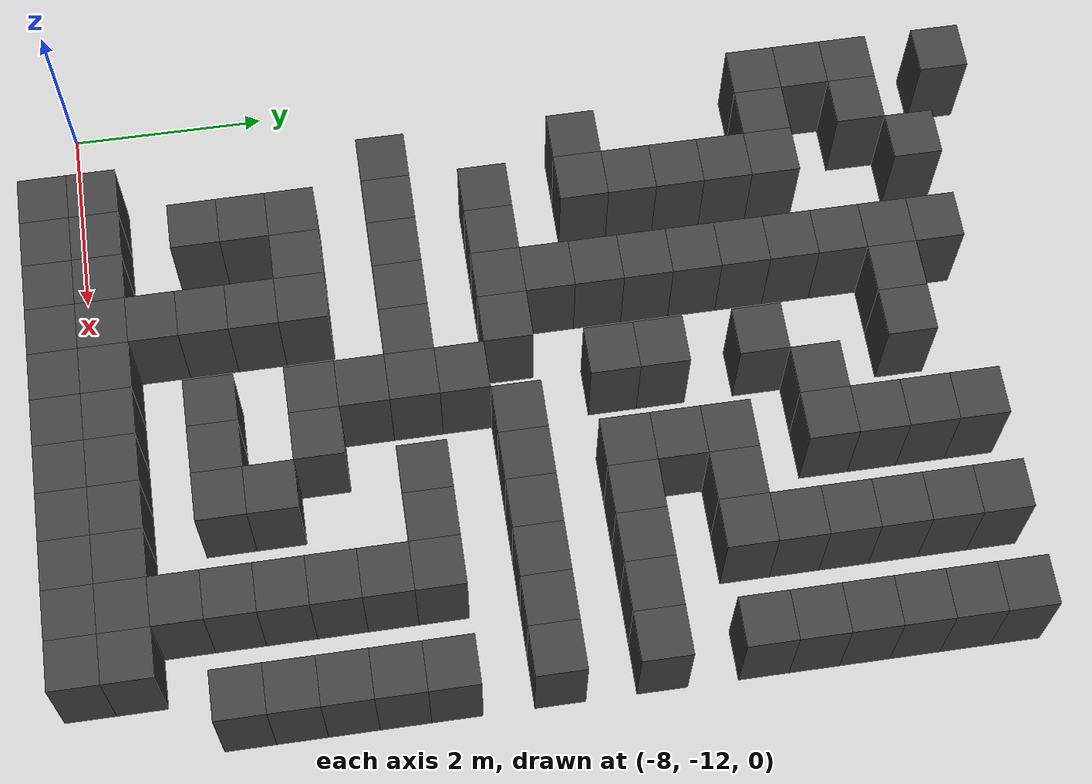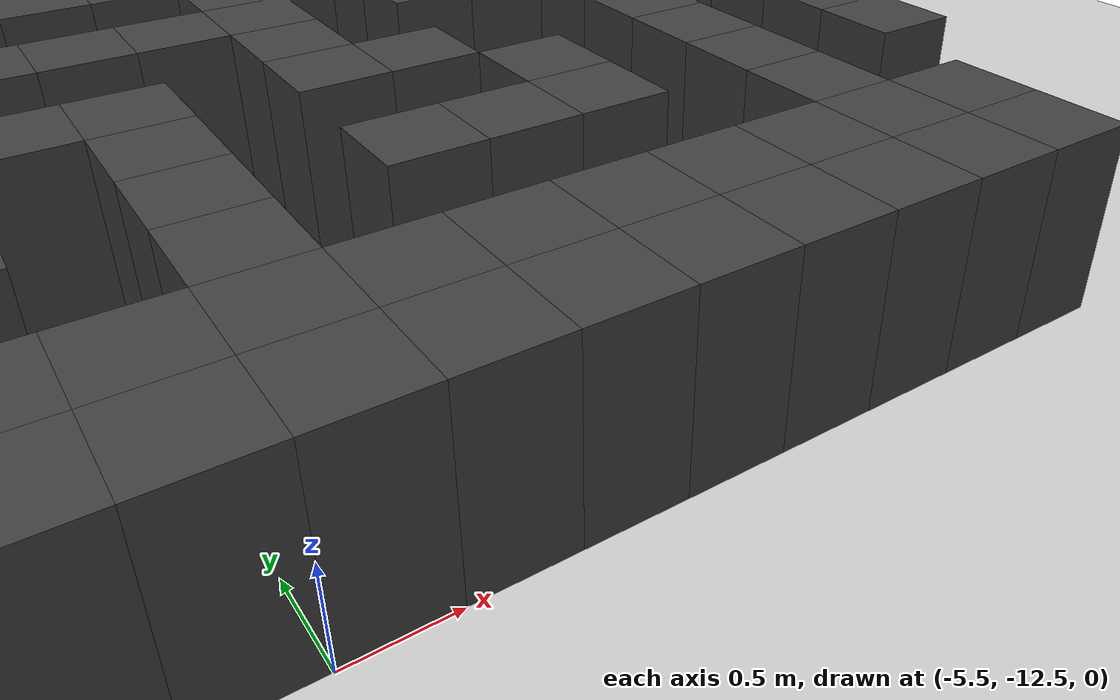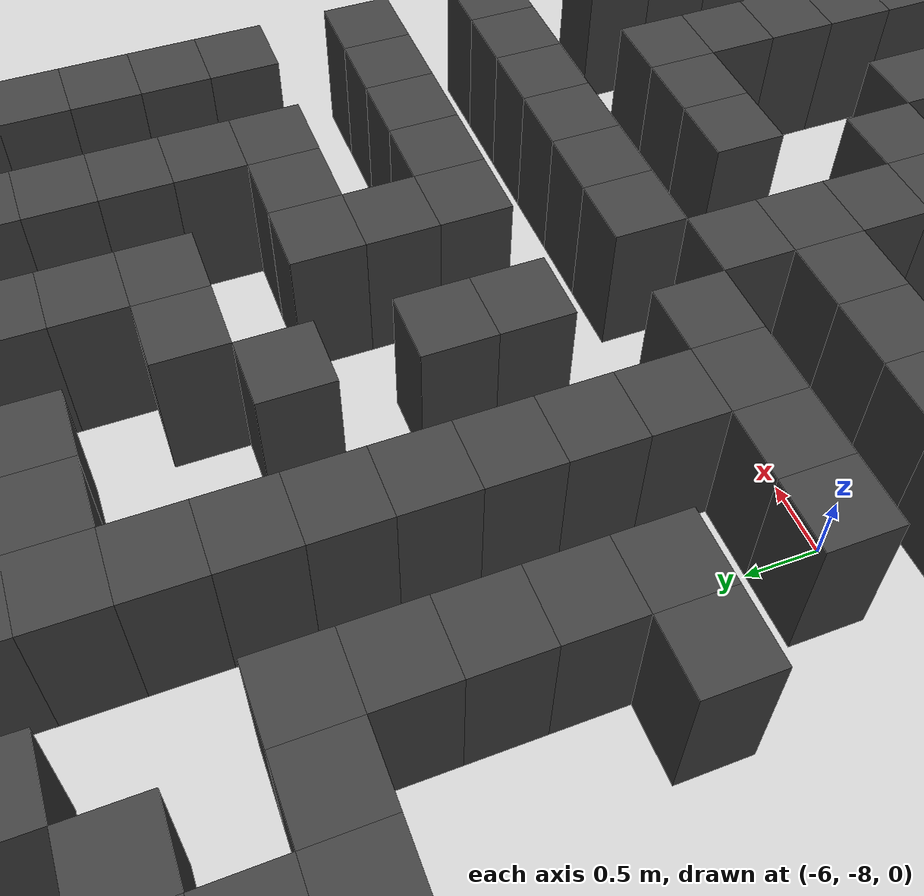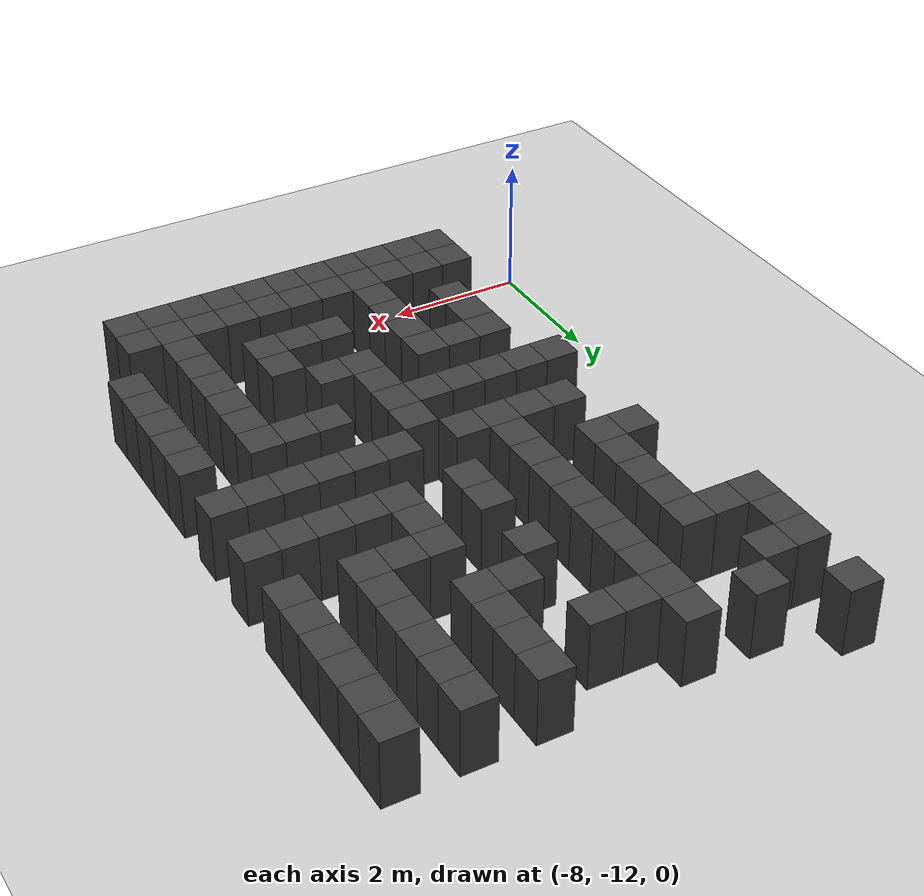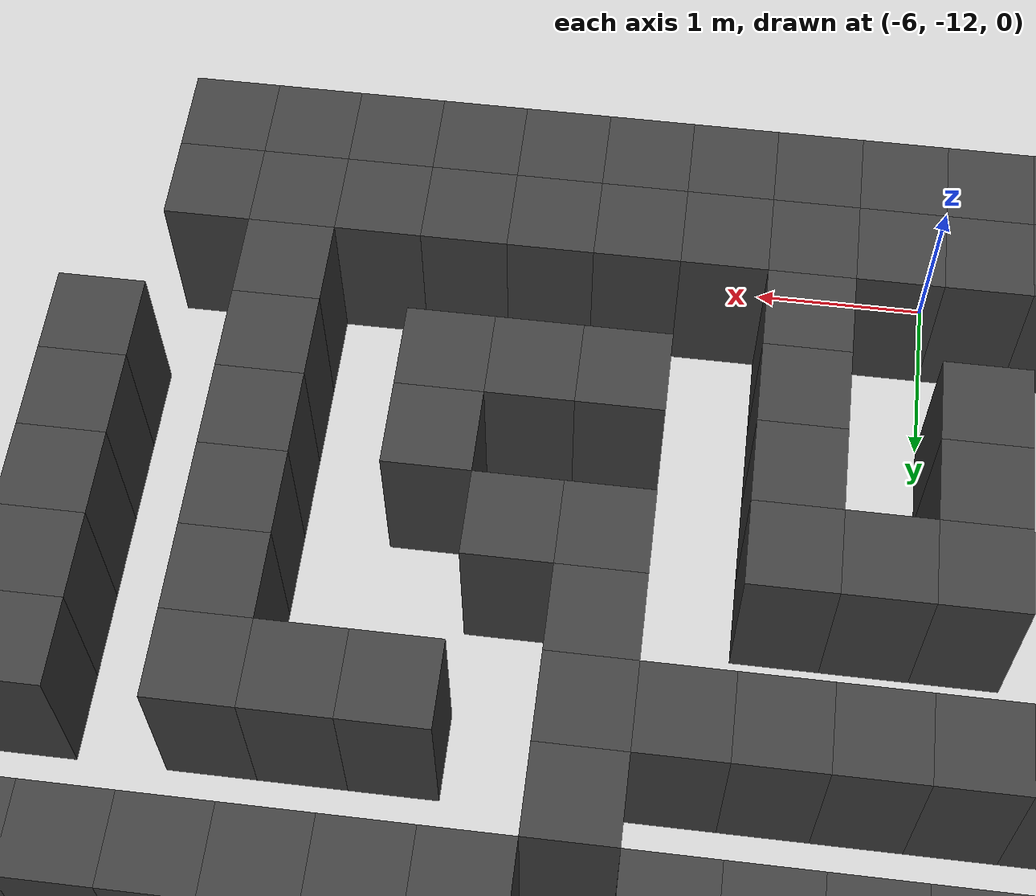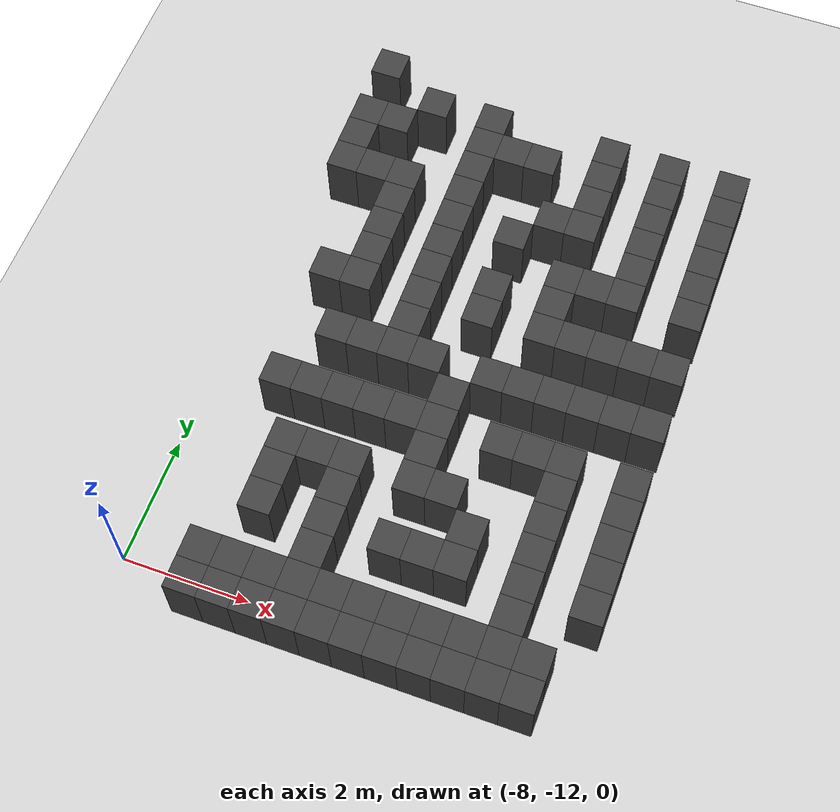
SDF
<sdf version="1.7">
 <world name="map_18914">
  <model name="ground_plane">
   <static>true</static>
   <link name="link">
    <collision name="collision">
     <geometry><plane><normal>0 0 1</normal><size>200 200</size></plane></geometry>
    </collision>
    <visual name="visual">
     <geometry><plane><normal>0 0 1</normal><size>200 200</size></plane></geometry>
     <material><ambient>0.8 0.8 0.8 1</ambient><diffuse>0.8 0.8 0.8 1</diffuse></material>
    </visual>
   </link>
  </model>
  <model name="maze_environment">
   <static>true</static>
   <link name="wall_775">
    <pose>-7.250 -2.750 0.500 0 0 0</pose>
    <collision name="col"><geometry><box><size>0.5 0.5 1.0</size></box></geometry></collision>
    <visual name="vis">
     <geometry><box><size>0.5 0.5 1.0</size></box></geometry>
     <material><ambient>0.15 0.15 0.15 1</ambient><diffuse>0.25 0.25 0.25 1</diffuse></material>
    </visual>
   </link>
   <link name="wall_807">
    <pose>-6.250 -3.250 0.500 0 0 0</pose>
    <collision name="col"><geometry><box><size>0.5 0.5 1.0</size></box></geometry></collision>
    <visual name="vis">
     <geometry><box><size>0.5 0.5 1.0</size></box></geometry>
     <material><ambient>0.15 0.15 0.15 1</ambient><diffuse>0.25 0.25 0.25 1</diffuse></material>
    </visual>
   </link>
   <link name="wall_808">
    <pose>-5.250 -3.250 0.500 0 0 0</pose>
    <collision name="col"><geometry><box><size>0.5 0.5 1.0</size></box></geometry></collision>
    <visual name="vis">
     <geometry><box><size>0.5 0.5 1.0</size></box></geometry>
     <material><ambient>0.15 0.15 0.15 1</ambient><diffuse>0.25 0.25 0.25 1</diffuse></material>
    </visual>
   </link>
   <link name="wall_809">
    <pose>-3.250 -3.250 0.500 0 0 0</pose>
    <collision name="col"><geometry><box><size>0.5 0.5 1.0</size></box></geometry></collision>
    <visual name="vis">
     <geometry><box><size>0.5 0.5 1.0</size></box></geometry>
     <material><ambient>0.15 0.15 0.15 1</ambient><diffuse>0.25 0.25 0.25 1</diffuse></material>
    </visual>
   </link>
   <link name="wall_810">
    <pose>-2.250 -3.250 0.500 0 0 0</pose>
    <collision name="col"><geometry><box><size>0.5 0.5 1.0</size></box></geometry></collision>
    <visual name="vis">
     <geometry><box><size>0.5 0.5 1.0</size></box></geometry>
     <material><ambient>0.15 0.15 0.15 1</ambient><diffuse>0.25 0.25 0.25 1</diffuse></material>
    </visual>
   </link>
   <link name="wall_811">
    <pose>-1.250 -3.250 0.500 0 0 0</pose>
    <collision name="col"><geometry><box><size>0.5 0.5 1.0</size></box></geometry></collision>
    <visual name="vis">
     <geometry><box><size>0.5 0.5 1.0</size></box></geometry>
     <material><ambient>0.15 0.15 0.15 1</ambient><diffuse>0.25 0.25 0.25 1</diffuse></material>
    </visual>
   </link>
   <link name="wall_826">
    <pose>-7.250 -3.750 0.500 0 0 0</pose>
    <collision name="col"><geometry><box><size>0.5 0.5 1.0</size></box></geometry></collision>
    <visual name="vis">
     <geometry><box><size>0.5 0.5 1.0</size></box></geometry>
     <material><ambient>0.15 0.15 0.15 1</ambient><diffuse>0.25 0.25 0.25 1</diffuse></material>
    </visual>
   </link>
   <link name="wall_827">
    <pose>-6.750 -3.750 0.500 0 0 0</pose>
    <collision name="col"><geometry><box><size>0.5 0.5 1.0</size></box></geometry></collision>
    <visual name="vis">
     <geometry><box><size>0.5 0.5 1.0</size></box></geometry>
     <material><ambient>0.15 0.15 0.15 1</ambient><diffuse>0.25 0.25 0.25 1</diffuse></material>
    </visual>
   </link>
   <link name="wall_828">
    <pose>-5.250 -3.750 0.500 0 0 0</pose>
    <collision name="col"><geometry><box><size>0.5 0.5 1.0</size></box></geometry></collision>
    <visual name="vis">
     <geometry><box><size>0.5 0.5 1.0</size></box></geometry>
     <material><ambient>0.15 0.15 0.15 1</ambient><diffuse>0.25 0.25 0.25 1</diffuse></material>
    </visual>
   </link>
   <link name="wall_829">
    <pose>-4.750 -3.750 0.500 0 0 0</pose>
    <collision name="col"><geometry><box><size>0.5 0.5 1.0</size></box></geometry></collision>
    <visual name="vis">
     <geometry><box><size>0.5 0.5 1.0</size></box></geometry>
     <material><ambient>0.15 0.15 0.15 1</ambient><diffuse>0.25 0.25 0.25 1</diffuse></material>
    </visual>
   </link>
   <link name="wall_830">
    <pose>-4.250 -3.750 0.500 0 0 0</pose>
    <collision name="col"><geometry><box><size>0.5 0.5 1.0</size></box></geometry></collision>
    <visual name="vis">
     <geometry><box><size>0.5 0.5 1.0</size></box></geometry>
     <material><ambient>0.15 0.15 0.15 1</ambient><diffuse>0.25 0.25 0.25 1</diffuse></material>
    </visual>
   </link>
   <link name="wall_831">
    <pose>-3.250 -3.750 0.500 0 0 0</pose>
    <collision name="col"><geometry><box><size>0.5 0.5 1.0</size></box></geometry></collision>
    <visual name="vis">
     <geometry><box><size>0.5 0.5 1.0</size></box></geometry>
     <material><ambient>0.15 0.15 0.15 1</ambient><diffuse>0.25 0.25 0.25 1</diffuse></material>
    </visual>
   </link>
   <link name="wall_832">
    <pose>-2.250 -3.750 0.500 0 0 0</pose>
    <collision name="col"><geometry><box><size>0.5 0.5 1.0</size></box></geometry></collision>
    <visual name="vis">
     <geometry><box><size>0.5 0.5 1.0</size></box></geometry>
     <material><ambient>0.15 0.15 0.15 1</ambient><diffuse>0.25 0.25 0.25 1</diffuse></material>
    </visual>
   </link>
   <link name="wall_833">
    <pose>-1.250 -3.750 0.500 0 0 0</pose>
    <collision name="col"><geometry><box><size>0.5 0.5 1.0</size></box></geometry></collision>
    <visual name="vis">
     <geometry><box><size>0.5 0.5 1.0</size></box></geometry>
     <material><ambient>0.15 0.15 0.15 1</ambient><diffuse>0.25 0.25 0.25 1</diffuse></material>
    </visual>
   </link>
   <link name="wall_859">
    <pose>-7.250 -4.250 0.500 0 0 0</pose>
    <collision name="col"><geometry><box><size>0.5 0.5 1.0</size></box></geometry></collision>
    <visual name="vis">
     <geometry><box><size>0.5 0.5 1.0</size></box></geometry>
     <material><ambient>0.15 0.15 0.15 1</ambient><diffuse>0.25 0.25 0.25 1</diffuse></material>
    </visual>
   </link>
   <link name="wall_860">
    <pose>-5.250 -4.250 0.500 0 0 0</pose>
    <collision name="col"><geometry><box><size>0.5 0.5 1.0</size></box></geometry></collision>
    <visual name="vis">
     <geometry><box><size>0.5 0.5 1.0</size></box></geometry>
     <material><ambient>0.15 0.15 0.15 1</ambient><diffuse>0.25 0.25 0.25 1</diffuse></material>
    </visual>
   </link>
   <link name="wall_861">
    <pose>-3.250 -4.250 0.500 0 0 0</pose>
    <collision name="col"><geometry><box><size>0.5 0.5 1.0</size></box></geometry></collision>
    <visual name="vis">
     <geometry><box><size>0.5 0.5 1.0</size></box></geometry>
     <material><ambient>0.15 0.15 0.15 1</ambient><diffuse>0.25 0.25 0.25 1</diffuse></material>
    </visual>
   </link>
   <link name="wall_862">
    <pose>-2.250 -4.250 0.500 0 0 0</pose>
    <collision name="col"><geometry><box><size>0.5 0.5 1.0</size></box></geometry></collision>
    <visual name="vis">
     <geometry><box><size>0.5 0.5 1.0</size></box></geometry>
     <material><ambient>0.15 0.15 0.15 1</ambient><diffuse>0.25 0.25 0.25 1</diffuse></material>
    </visual>
   </link>
   <link name="wall_863">
    <pose>-1.250 -4.250 0.500 0 0 0</pose>
    <collision name="col"><geometry><box><size>0.5 0.5 1.0</size></box></geometry></collision>
    <visual name="vis">
     <geometry><box><size>0.5 0.5 1.0</size></box></geometry>
     <material><ambient>0.15 0.15 0.15 1</ambient><diffuse>0.25 0.25 0.25 1</diffuse></material>
    </visual>
   </link>
   <link name="wall_876">
    <pose>-7.250 -4.750 0.500 0 0 0</pose>
    <collision name="col"><geometry><box><size>0.5 0.5 1.0</size></box></geometry></collision>
    <visual name="vis">
     <geometry><box><size>0.5 0.5 1.0</size></box></geometry>
     <material><ambient>0.15 0.15 0.15 1</ambient><diffuse>0.25 0.25 0.25 1</diffuse></material>
    </visual>
   </link>
   <link name="wall_877">
    <pose>-6.750 -4.750 0.500 0 0 0</pose>
    <collision name="col"><geometry><box><size>0.5 0.5 1.0</size></box></geometry></collision>
    <visual name="vis">
     <geometry><box><size>0.5 0.5 1.0</size></box></geometry>
     <material><ambient>0.15 0.15 0.15 1</ambient><diffuse>0.25 0.25 0.25 1</diffuse></material>
    </visual>
   </link>
   <link name="wall_878">
    <pose>-6.250 -4.750 0.500 0 0 0</pose>
    <collision name="col"><geometry><box><size>0.5 0.5 1.0</size></box></geometry></collision>
    <visual name="vis">
     <geometry><box><size>0.5 0.5 1.0</size></box></geometry>
     <material><ambient>0.15 0.15 0.15 1</ambient><diffuse>0.25 0.25 0.25 1</diffuse></material>
    </visual>
   </link>
   <link name="wall_879">
    <pose>-5.250 -4.750 0.500 0 0 0</pose>
    <collision name="col"><geometry><box><size>0.5 0.5 1.0</size></box></geometry></collision>
    <visual name="vis">
     <geometry><box><size>0.5 0.5 1.0</size></box></geometry>
     <material><ambient>0.15 0.15 0.15 1</ambient><diffuse>0.25 0.25 0.25 1</diffuse></material>
    </visual>
   </link>
   <link name="wall_880">
    <pose>-3.750 -4.750 0.500 0 0 0</pose>
    <collision name="col"><geometry><box><size>0.5 0.5 1.0</size></box></geometry></collision>
    <visual name="vis">
     <geometry><box><size>0.5 0.5 1.0</size></box></geometry>
     <material><ambient>0.15 0.15 0.15 1</ambient><diffuse>0.25 0.25 0.25 1</diffuse></material>
    </visual>
   </link>
   <link name="wall_881">
    <pose>-3.250 -4.750 0.500 0 0 0</pose>
    <collision name="col"><geometry><box><size>0.5 0.5 1.0</size></box></geometry></collision>
    <visual name="vis">
     <geometry><box><size>0.5 0.5 1.0</size></box></geometry>
     <material><ambient>0.15 0.15 0.15 1</ambient><diffuse>0.25 0.25 0.25 1</diffuse></material>
    </visual>
   </link>
   <link name="wall_882">
    <pose>-2.250 -4.750 0.500 0 0 0</pose>
    <collision name="col"><geometry><box><size>0.5 0.5 1.0</size></box></geometry></collision>
    <visual name="vis">
     <geometry><box><size>0.5 0.5 1.0</size></box></geometry>
     <material><ambient>0.15 0.15 0.15 1</ambient><diffuse>0.25 0.25 0.25 1</diffuse></material>
    </visual>
   </link>
   <link name="wall_883">
    <pose>-1.250 -4.750 0.500 0 0 0</pose>
    <collision name="col"><geometry><box><size>0.5 0.5 1.0</size></box></geometry></collision>
    <visual name="vis">
     <geometry><box><size>0.5 0.5 1.0</size></box></geometry>
     <material><ambient>0.15 0.15 0.15 1</ambient><diffuse>0.25 0.25 0.25 1</diffuse></material>
    </visual>
   </link>
   <link name="wall_906">
    <pose>-6.250 -5.250 0.500 0 0 0</pose>
    <collision name="col"><geometry><box><size>0.5 0.5 1.0</size></box></geometry></collision>
    <visual name="vis">
     <geometry><box><size>0.5 0.5 1.0</size></box></geometry>
     <material><ambient>0.15 0.15 0.15 1</ambient><diffuse>0.25 0.25 0.25 1</diffuse></material>
    </visual>
   </link>
   <link name="wall_907">
    <pose>-5.250 -5.250 0.500 0 0 0</pose>
    <collision name="col"><geometry><box><size>0.5 0.5 1.0</size></box></geometry></collision>
    <visual name="vis">
     <geometry><box><size>0.5 0.5 1.0</size></box></geometry>
     <material><ambient>0.15 0.15 0.15 1</ambient><diffuse>0.25 0.25 0.25 1</diffuse></material>
    </visual>
   </link>
   <link name="wall_908">
    <pose>-4.250 -5.250 0.500 0 0 0</pose>
    <collision name="col"><geometry><box><size>0.5 0.5 1.0</size></box></geometry></collision>
    <visual name="vis">
     <geometry><box><size>0.5 0.5 1.0</size></box></geometry>
     <material><ambient>0.15 0.15 0.15 1</ambient><diffuse>0.25 0.25 0.25 1</diffuse></material>
    </visual>
   </link>
   <link name="wall_909">
    <pose>-2.250 -5.250 0.500 0 0 0</pose>
    <collision name="col"><geometry><box><size>0.5 0.5 1.0</size></box></geometry></collision>
    <visual name="vis">
     <geometry><box><size>0.5 0.5 1.0</size></box></geometry>
     <material><ambient>0.15 0.15 0.15 1</ambient><diffuse>0.25 0.25 0.25 1</diffuse></material>
    </visual>
   </link>
   <link name="wall_910">
    <pose>-1.250 -5.250 0.500 0 0 0</pose>
    <collision name="col"><geometry><box><size>0.5 0.5 1.0</size></box></geometry></collision>
    <visual name="vis">
     <geometry><box><size>0.5 0.5 1.0</size></box></geometry>
     <material><ambient>0.15 0.15 0.15 1</ambient><diffuse>0.25 0.25 0.25 1</diffuse></material>
    </visual>
   </link>
   <link name="wall_928">
    <pose>-6.250 -5.750 0.500 0 0 0</pose>
    <collision name="col"><geometry><box><size>0.5 0.5 1.0</size></box></geometry></collision>
    <visual name="vis">
     <geometry><box><size>0.5 0.5 1.0</size></box></geometry>
     <material><ambient>0.15 0.15 0.15 1</ambient><diffuse>0.25 0.25 0.25 1</diffuse></material>
    </visual>
   </link>
   <link name="wall_929">
    <pose>-5.250 -5.750 0.500 0 0 0</pose>
    <collision name="col"><geometry><box><size>0.5 0.5 1.0</size></box></geometry></collision>
    <visual name="vis">
     <geometry><box><size>0.5 0.5 1.0</size></box></geometry>
     <material><ambient>0.15 0.15 0.15 1</ambient><diffuse>0.25 0.25 0.25 1</diffuse></material>
    </visual>
   </link>
   <link name="wall_930">
    <pose>-3.250 -5.750 0.500 0 0 0</pose>
    <collision name="col"><geometry><box><size>0.5 0.5 1.0</size></box></geometry></collision>
    <visual name="vis">
     <geometry><box><size>0.5 0.5 1.0</size></box></geometry>
     <material><ambient>0.15 0.15 0.15 1</ambient><diffuse>0.25 0.25 0.25 1</diffuse></material>
    </visual>
   </link>
   <link name="wall_931">
    <pose>-2.750 -5.750 0.500 0 0 0</pose>
    <collision name="col"><geometry><box><size>0.5 0.5 1.0</size></box></geometry></collision>
    <visual name="vis">
     <geometry><box><size>0.5 0.5 1.0</size></box></geometry>
     <material><ambient>0.15 0.15 0.15 1</ambient><diffuse>0.25 0.25 0.25 1</diffuse></material>
    </visual>
   </link>
   <link name="wall_932">
    <pose>-2.250 -5.750 0.500 0 0 0</pose>
    <collision name="col"><geometry><box><size>0.5 0.5 1.0</size></box></geometry></collision>
    <visual name="vis">
     <geometry><box><size>0.5 0.5 1.0</size></box></geometry>
     <material><ambient>0.15 0.15 0.15 1</ambient><diffuse>0.25 0.25 0.25 1</diffuse></material>
    </visual>
   </link>
   <link name="wall_933">
    <pose>-1.250 -5.750 0.500 0 0 0</pose>
    <collision name="col"><geometry><box><size>0.5 0.5 1.0</size></box></geometry></collision>
    <visual name="vis">
     <geometry><box><size>0.5 0.5 1.0</size></box></geometry>
     <material><ambient>0.15 0.15 0.15 1</ambient><diffuse>0.25 0.25 0.25 1</diffuse></material>
    </visual>
   </link>
   <link name="wall_954">
    <pose>-6.250 -6.250 0.500 0 0 0</pose>
    <collision name="col"><geometry><box><size>0.5 0.5 1.0</size></box></geometry></collision>
    <visual name="vis">
     <geometry><box><size>0.5 0.5 1.0</size></box></geometry>
     <material><ambient>0.15 0.15 0.15 1</ambient><diffuse>0.25 0.25 0.25 1</diffuse></material>
    </visual>
   </link>
   <link name="wall_955">
    <pose>-5.250 -6.250 0.500 0 0 0</pose>
    <collision name="col"><geometry><box><size>0.5 0.5 1.0</size></box></geometry></collision>
    <visual name="vis">
     <geometry><box><size>0.5 0.5 1.0</size></box></geometry>
     <material><ambient>0.15 0.15 0.15 1</ambient><diffuse>0.25 0.25 0.25 1</diffuse></material>
    </visual>
   </link>
   <link name="wall_956">
    <pose>-4.250 -6.250 0.500 0 0 0</pose>
    <collision name="col"><geometry><box><size>0.5 0.5 1.0</size></box></geometry></collision>
    <visual name="vis">
     <geometry><box><size>0.5 0.5 1.0</size></box></geometry>
     <material><ambient>0.15 0.15 0.15 1</ambient><diffuse>0.25 0.25 0.25 1</diffuse></material>
    </visual>
   </link>
   <link name="wall_957">
    <pose>-3.250 -6.250 0.500 0 0 0</pose>
    <collision name="col"><geometry><box><size>0.5 0.5 1.0</size></box></geometry></collision>
    <visual name="vis">
     <geometry><box><size>0.5 0.5 1.0</size></box></geometry>
     <material><ambient>0.15 0.15 0.15 1</ambient><diffuse>0.25 0.25 0.25 1</diffuse></material>
    </visual>
   </link>
   <link name="wall_973">
    <pose>-6.750 -6.750 0.500 0 0 0</pose>
    <collision name="col"><geometry><box><size>0.5 0.5 1.0</size></box></geometry></collision>
    <visual name="vis">
     <geometry><box><size>0.5 0.5 1.0</size></box></geometry>
     <material><ambient>0.15 0.15 0.15 1</ambient><diffuse>0.25 0.25 0.25 1</diffuse></material>
    </visual>
   </link>
   <link name="wall_974">
    <pose>-6.250 -6.750 0.500 0 0 0</pose>
    <collision name="col"><geometry><box><size>0.5 0.5 1.0</size></box></geometry></collision>
    <visual name="vis">
     <geometry><box><size>0.5 0.5 1.0</size></box></geometry>
     <material><ambient>0.15 0.15 0.15 1</ambient><diffuse>0.25 0.25 0.25 1</diffuse></material>
    </visual>
   </link>
   <link name="wall_975">
    <pose>-5.250 -6.750 0.500 0 0 0</pose>
    <collision name="col"><geometry><box><size>0.5 0.5 1.0</size></box></geometry></collision>
    <visual name="vis">
     <geometry><box><size>0.5 0.5 1.0</size></box></geometry>
     <material><ambient>0.15 0.15 0.15 1</ambient><diffuse>0.25 0.25 0.25 1</diffuse></material>
    </visual>
   </link>
   <link name="wall_976">
    <pose>-4.250 -6.750 0.500 0 0 0</pose>
    <collision name="col"><geometry><box><size>0.5 0.5 1.0</size></box></geometry></collision>
    <visual name="vis">
     <geometry><box><size>0.5 0.5 1.0</size></box></geometry>
     <material><ambient>0.15 0.15 0.15 1</ambient><diffuse>0.25 0.25 0.25 1</diffuse></material>
    </visual>
   </link>
   <link name="wall_977">
    <pose>-3.250 -6.750 0.500 0 0 0</pose>
    <collision name="col"><geometry><box><size>0.5 0.5 1.0</size></box></geometry></collision>
    <visual name="vis">
     <geometry><box><size>0.5 0.5 1.0</size></box></geometry>
     <material><ambient>0.15 0.15 0.15 1</ambient><diffuse>0.25 0.25 0.25 1</diffuse></material>
    </visual>
   </link>
   <link name="wall_978">
    <pose>-2.750 -6.750 0.500 0 0 0</pose>
    <collision name="col"><geometry><box><size>0.5 0.5 1.0</size></box></geometry></collision>
    <visual name="vis">
     <geometry><box><size>0.5 0.5 1.0</size></box></geometry>
     <material><ambient>0.15 0.15 0.15 1</ambient><diffuse>0.25 0.25 0.25 1</diffuse></material>
    </visual>
   </link>
   <link name="wall_979">
    <pose>-2.250 -6.750 0.500 0 0 0</pose>
    <collision name="col"><geometry><box><size>0.5 0.5 1.0</size></box></geometry></collision>
    <visual name="vis">
     <geometry><box><size>0.5 0.5 1.0</size></box></geometry>
     <material><ambient>0.15 0.15 0.15 1</ambient><diffuse>0.25 0.25 0.25 1</diffuse></material>
    </visual>
   </link>
   <link name="wall_980">
    <pose>-1.750 -6.750 0.500 0 0 0</pose>
    <collision name="col"><geometry><box><size>0.5 0.5 1.0</size></box></geometry></collision>
    <visual name="vis">
     <geometry><box><size>0.5 0.5 1.0</size></box></geometry>
     <material><ambient>0.15 0.15 0.15 1</ambient><diffuse>0.25 0.25 0.25 1</diffuse></material>
    </visual>
   </link>
   <link name="wall_981">
    <pose>-1.250 -6.750 0.500 0 0 0</pose>
    <collision name="col"><geometry><box><size>0.5 0.5 1.0</size></box></geometry></collision>
    <visual name="vis">
     <geometry><box><size>0.5 0.5 1.0</size></box></geometry>
     <material><ambient>0.15 0.15 0.15 1</ambient><diffuse>0.25 0.25 0.25 1</diffuse></material>
    </visual>
   </link>
   <link name="wall_1007">
    <pose>-5.250 -7.250 0.500 0 0 0</pose>
    <collision name="col"><geometry><box><size>0.5 0.5 1.0</size></box></geometry></collision>
    <visual name="vis">
     <geometry><box><size>0.5 0.5 1.0</size></box></geometry>
     <material><ambient>0.15 0.15 0.15 1</ambient><diffuse>0.25 0.25 0.25 1</diffuse></material>
    </visual>
   </link>
   <link name="wall_1022">
    <pose>-6.250 -7.750 0.500 0 0 0</pose>
    <collision name="col"><geometry><box><size>0.5 0.5 1.0</size></box></geometry></collision>
    <visual name="vis">
     <geometry><box><size>0.5 0.5 1.0</size></box></geometry>
     <material><ambient>0.15 0.15 0.15 1</ambient><diffuse>0.25 0.25 0.25 1</diffuse></material>
    </visual>
   </link>
   <link name="wall_1023">
    <pose>-5.750 -7.750 0.500 0 0 0</pose>
    <collision name="col"><geometry><box><size>0.5 0.5 1.0</size></box></geometry></collision>
    <visual name="vis">
     <geometry><box><size>0.5 0.5 1.0</size></box></geometry>
     <material><ambient>0.15 0.15 0.15 1</ambient><diffuse>0.25 0.25 0.25 1</diffuse></material>
    </visual>
   </link>
   <link name="wall_1024">
    <pose>-5.250 -7.750 0.500 0 0 0</pose>
    <collision name="col"><geometry><box><size>0.5 0.5 1.0</size></box></geometry></collision>
    <visual name="vis">
     <geometry><box><size>0.5 0.5 1.0</size></box></geometry>
     <material><ambient>0.15 0.15 0.15 1</ambient><diffuse>0.25 0.25 0.25 1</diffuse></material>
    </visual>
   </link>
   <link name="wall_1025">
    <pose>-4.750 -7.750 0.500 0 0 0</pose>
    <collision name="col"><geometry><box><size>0.5 0.5 1.0</size></box></geometry></collision>
    <visual name="vis">
     <geometry><box><size>0.5 0.5 1.0</size></box></geometry>
     <material><ambient>0.15 0.15 0.15 1</ambient><diffuse>0.25 0.25 0.25 1</diffuse></material>
    </visual>
   </link>
   <link name="wall_1026">
    <pose>-3.750 -7.750 0.500 0 0 0</pose>
    <collision name="col"><geometry><box><size>0.5 0.5 1.0</size></box></geometry></collision>
    <visual name="vis">
     <geometry><box><size>0.5 0.5 1.0</size></box></geometry>
     <material><ambient>0.15 0.15 0.15 1</ambient><diffuse>0.25 0.25 0.25 1</diffuse></material>
    </visual>
   </link>
   <link name="wall_1027">
    <pose>-3.250 -7.750 0.500 0 0 0</pose>
    <collision name="col"><geometry><box><size>0.5 0.5 1.0</size></box></geometry></collision>
    <visual name="vis">
     <geometry><box><size>0.5 0.5 1.0</size></box></geometry>
     <material><ambient>0.15 0.15 0.15 1</ambient><diffuse>0.25 0.25 0.25 1</diffuse></material>
    </visual>
   </link>
   <link name="wall_1028">
    <pose>-2.750 -7.750 0.500 0 0 0</pose>
    <collision name="col"><geometry><box><size>0.5 0.5 1.0</size></box></geometry></collision>
    <visual name="vis">
     <geometry><box><size>0.5 0.5 1.0</size></box></geometry>
     <material><ambient>0.15 0.15 0.15 1</ambient><diffuse>0.25 0.25 0.25 1</diffuse></material>
    </visual>
   </link>
   <link name="wall_1029">
    <pose>-2.250 -7.750 0.500 0 0 0</pose>
    <collision name="col"><geometry><box><size>0.5 0.5 1.0</size></box></geometry></collision>
    <visual name="vis">
     <geometry><box><size>0.5 0.5 1.0</size></box></geometry>
     <material><ambient>0.15 0.15 0.15 1</ambient><diffuse>0.25 0.25 0.25 1</diffuse></material>
    </visual>
   </link>
   <link name="wall_1030">
    <pose>-1.750 -7.750 0.500 0 0 0</pose>
    <collision name="col"><geometry><box><size>0.5 0.5 1.0</size></box></geometry></collision>
    <visual name="vis">
     <geometry><box><size>0.5 0.5 1.0</size></box></geometry>
     <material><ambient>0.15 0.15 0.15 1</ambient><diffuse>0.25 0.25 0.25 1</diffuse></material>
    </visual>
   </link>
   <link name="wall_1031">
    <pose>-1.250 -7.750 0.500 0 0 0</pose>
    <collision name="col"><geometry><box><size>0.5 0.5 1.0</size></box></geometry></collision>
    <visual name="vis">
     <geometry><box><size>0.5 0.5 1.0</size></box></geometry>
     <material><ambient>0.15 0.15 0.15 1</ambient><diffuse>0.25 0.25 0.25 1</diffuse></material>
    </visual>
   </link>
   <link name="wall_1057">
    <pose>-4.250 -8.250 0.500 0 0 0</pose>
    <collision name="col"><geometry><box><size>0.5 0.5 1.0</size></box></geometry></collision>
    <visual name="vis">
     <geometry><box><size>0.5 0.5 1.0</size></box></geometry>
     <material><ambient>0.15 0.15 0.15 1</ambient><diffuse>0.25 0.25 0.25 1</diffuse></material>
    </visual>
   </link>
   <link name="wall_1074">
    <pose>-6.750 -8.750 0.500 0 0 0</pose>
    <collision name="col"><geometry><box><size>0.5 0.5 1.0</size></box></geometry></collision>
    <visual name="vis">
     <geometry><box><size>0.5 0.5 1.0</size></box></geometry>
     <material><ambient>0.15 0.15 0.15 1</ambient><diffuse>0.25 0.25 0.25 1</diffuse></material>
    </visual>
   </link>
   <link name="wall_1075">
    <pose>-6.250 -8.750 0.500 0 0 0</pose>
    <collision name="col"><geometry><box><size>0.5 0.5 1.0</size></box></geometry></collision>
    <visual name="vis">
     <geometry><box><size>0.5 0.5 1.0</size></box></geometry>
     <material><ambient>0.15 0.15 0.15 1</ambient><diffuse>0.25 0.25 0.25 1</diffuse></material>
    </visual>
   </link>
   <link name="wall_1076">
    <pose>-5.750 -8.750 0.500 0 0 0</pose>
    <collision name="col"><geometry><box><size>0.5 0.5 1.0</size></box></geometry></collision>
    <visual name="vis">
     <geometry><box><size>0.5 0.5 1.0</size></box></geometry>
     <material><ambient>0.15 0.15 0.15 1</ambient><diffuse>0.25 0.25 0.25 1</diffuse></material>
    </visual>
   </link>
   <link name="wall_1077">
    <pose>-5.250 -8.750 0.500 0 0 0</pose>
    <collision name="col"><geometry><box><size>0.5 0.5 1.0</size></box></geometry></collision>
    <visual name="vis">
     <geometry><box><size>0.5 0.5 1.0</size></box></geometry>
     <material><ambient>0.15 0.15 0.15 1</ambient><diffuse>0.25 0.25 0.25 1</diffuse></material>
    </visual>
   </link>
   <link name="wall_1078">
    <pose>-4.750 -8.750 0.500 0 0 0</pose>
    <collision name="col"><geometry><box><size>0.5 0.5 1.0</size></box></geometry></collision>
    <visual name="vis">
     <geometry><box><size>0.5 0.5 1.0</size></box></geometry>
     <material><ambient>0.15 0.15 0.15 1</ambient><diffuse>0.25 0.25 0.25 1</diffuse></material>
    </visual>
   </link>
   <link name="wall_1079">
    <pose>-4.250 -8.750 0.500 0 0 0</pose>
    <collision name="col"><geometry><box><size>0.5 0.5 1.0</size></box></geometry></collision>
    <visual name="vis">
     <geometry><box><size>0.5 0.5 1.0</size></box></geometry>
     <material><ambient>0.15 0.15 0.15 1</ambient><diffuse>0.25 0.25 0.25 1</diffuse></material>
    </visual>
   </link>
   <link name="wall_1080">
    <pose>-3.250 -8.750 0.500 0 0 0</pose>
    <collision name="col"><geometry><box><size>0.5 0.5 1.0</size></box></geometry></collision>
    <visual name="vis">
     <geometry><box><size>0.5 0.5 1.0</size></box></geometry>
     <material><ambient>0.15 0.15 0.15 1</ambient><diffuse>0.25 0.25 0.25 1</diffuse></material>
    </visual>
   </link>
   <link name="wall_1081">
    <pose>-2.750 -8.750 0.500 0 0 0</pose>
    <collision name="col"><geometry><box><size>0.5 0.5 1.0</size></box></geometry></collision>
    <visual name="vis">
     <geometry><box><size>0.5 0.5 1.0</size></box></geometry>
     <material><ambient>0.15 0.15 0.15 1</ambient><diffuse>0.25 0.25 0.25 1</diffuse></material>
    </visual>
   </link>
   <link name="wall_1082">
    <pose>-2.250 -8.750 0.500 0 0 0</pose>
    <collision name="col"><geometry><box><size>0.5 0.5 1.0</size></box></geometry></collision>
    <visual name="vis">
     <geometry><box><size>0.5 0.5 1.0</size></box></geometry>
     <material><ambient>0.15 0.15 0.15 1</ambient><diffuse>0.25 0.25 0.25 1</diffuse></material>
    </visual>
   </link>
   <link name="wall_1083">
    <pose>-1.250 -8.750 0.500 0 0 0</pose>
    <collision name="col"><geometry><box><size>0.5 0.5 1.0</size></box></geometry></collision>
    <visual name="vis">
     <geometry><box><size>0.5 0.5 1.0</size></box></geometry>
     <material><ambient>0.15 0.15 0.15 1</ambient><diffuse>0.25 0.25 0.25 1</diffuse></material>
    </visual>
   </link>
   <link name="wall_1106">
    <pose>-4.250 -9.250 0.500 0 0 0</pose>
    <collision name="col"><geometry><box><size>0.5 0.5 1.0</size></box></geometry></collision>
    <visual name="vis">
     <geometry><box><size>0.5 0.5 1.0</size></box></geometry>
     <material><ambient>0.15 0.15 0.15 1</ambient><diffuse>0.25 0.25 0.25 1</diffuse></material>
    </visual>
   </link>
   <link name="wall_1107">
    <pose>-2.250 -9.250 0.500 0 0 0</pose>
    <collision name="col"><geometry><box><size>0.5 0.5 1.0</size></box></geometry></collision>
    <visual name="vis">
     <geometry><box><size>0.5 0.5 1.0</size></box></geometry>
     <material><ambient>0.15 0.15 0.15 1</ambient><diffuse>0.25 0.25 0.25 1</diffuse></material>
    </visual>
   </link>
   <link name="wall_1108">
    <pose>-1.250 -9.250 0.500 0 0 0</pose>
    <collision name="col"><geometry><box><size>0.5 0.5 1.0</size></box></geometry></collision>
    <visual name="vis">
     <geometry><box><size>0.5 0.5 1.0</size></box></geometry>
     <material><ambient>0.15 0.15 0.15 1</ambient><diffuse>0.25 0.25 0.25 1</diffuse></material>
    </visual>
   </link>
   <link name="wall_1127">
    <pose>-6.250 -9.750 0.500 0 0 0</pose>
    <collision name="col"><geometry><box><size>0.5 0.5 1.0</size></box></geometry></collision>
    <visual name="vis">
     <geometry><box><size>0.5 0.5 1.0</size></box></geometry>
     <material><ambient>0.15 0.15 0.15 1</ambient><diffuse>0.25 0.25 0.25 1</diffuse></material>
    </visual>
   </link>
   <link name="wall_1128">
    <pose>-5.750 -9.750 0.500 0 0 0</pose>
    <collision name="col"><geometry><box><size>0.5 0.5 1.0</size></box></geometry></collision>
    <visual name="vis">
     <geometry><box><size>0.5 0.5 1.0</size></box></geometry>
     <material><ambient>0.15 0.15 0.15 1</ambient><diffuse>0.25 0.25 0.25 1</diffuse></material>
    </visual>
   </link>
   <link name="wall_1129">
    <pose>-5.250 -9.750 0.500 0 0 0</pose>
    <collision name="col"><geometry><box><size>0.5 0.5 1.0</size></box></geometry></collision>
    <visual name="vis">
     <geometry><box><size>0.5 0.5 1.0</size></box></geometry>
     <material><ambient>0.15 0.15 0.15 1</ambient><diffuse>0.25 0.25 0.25 1</diffuse></material>
    </visual>
   </link>
   <link name="wall_1130">
    <pose>-4.250 -9.750 0.500 0 0 0</pose>
    <collision name="col"><geometry><box><size>0.5 0.5 1.0</size></box></geometry></collision>
    <visual name="vis">
     <geometry><box><size>0.5 0.5 1.0</size></box></geometry>
     <material><ambient>0.15 0.15 0.15 1</ambient><diffuse>0.25 0.25 0.25 1</diffuse></material>
    </visual>
   </link>
   <link name="wall_1131">
    <pose>-3.750 -9.750 0.500 0 0 0</pose>
    <collision name="col"><geometry><box><size>0.5 0.5 1.0</size></box></geometry></collision>
    <visual name="vis">
     <geometry><box><size>0.5 0.5 1.0</size></box></geometry>
     <material><ambient>0.15 0.15 0.15 1</ambient><diffuse>0.25 0.25 0.25 1</diffuse></material>
    </visual>
   </link>
   <link name="wall_1132">
    <pose>-2.250 -9.750 0.500 0 0 0</pose>
    <collision name="col"><geometry><box><size>0.5 0.5 1.0</size></box></geometry></collision>
    <visual name="vis">
     <geometry><box><size>0.5 0.5 1.0</size></box></geometry>
     <material><ambient>0.15 0.15 0.15 1</ambient><diffuse>0.25 0.25 0.25 1</diffuse></material>
    </visual>
   </link>
   <link name="wall_1133">
    <pose>-1.250 -9.750 0.500 0 0 0</pose>
    <collision name="col"><geometry><box><size>0.5 0.5 1.0</size></box></geometry></collision>
    <visual name="vis">
     <geometry><box><size>0.5 0.5 1.0</size></box></geometry>
     <material><ambient>0.15 0.15 0.15 1</ambient><diffuse>0.25 0.25 0.25 1</diffuse></material>
    </visual>
   </link>
   <link name="wall_1156">
    <pose>-6.250 -10.250 0.500 0 0 0</pose>
    <collision name="col"><geometry><box><size>0.5 0.5 1.0</size></box></geometry></collision>
    <visual name="vis">
     <geometry><box><size>0.5 0.5 1.0</size></box></geometry>
     <material><ambient>0.15 0.15 0.15 1</ambient><diffuse>0.25 0.25 0.25 1</diffuse></material>
    </visual>
   </link>
   <link name="wall_1157">
    <pose>-5.250 -10.250 0.500 0 0 0</pose>
    <collision name="col"><geometry><box><size>0.5 0.5 1.0</size></box></geometry></collision>
    <visual name="vis">
     <geometry><box><size>0.5 0.5 1.0</size></box></geometry>
     <material><ambient>0.15 0.15 0.15 1</ambient><diffuse>0.25 0.25 0.25 1</diffuse></material>
    </visual>
   </link>
   <link name="wall_1158">
    <pose>-3.250 -10.250 0.500 0 0 0</pose>
    <collision name="col"><geometry><box><size>0.5 0.5 1.0</size></box></geometry></collision>
    <visual name="vis">
     <geometry><box><size>0.5 0.5 1.0</size></box></geometry>
     <material><ambient>0.15 0.15 0.15 1</ambient><diffuse>0.25 0.25 0.25 1</diffuse></material>
    </visual>
   </link>
   <link name="wall_1159">
    <pose>-2.250 -10.250 0.500 0 0 0</pose>
    <collision name="col"><geometry><box><size>0.5 0.5 1.0</size></box></geometry></collision>
    <visual name="vis">
     <geometry><box><size>0.5 0.5 1.0</size></box></geometry>
     <material><ambient>0.15 0.15 0.15 1</ambient><diffuse>0.25 0.25 0.25 1</diffuse></material>
    </visual>
   </link>
   <link name="wall_1160">
    <pose>-1.250 -10.250 0.500 0 0 0</pose>
    <collision name="col"><geometry><box><size>0.5 0.5 1.0</size></box></geometry></collision>
    <visual name="vis">
     <geometry><box><size>0.5 0.5 1.0</size></box></geometry>
     <material><ambient>0.15 0.15 0.15 1</ambient><diffuse>0.25 0.25 0.25 1</diffuse></material>
    </visual>
   </link>
   <link name="wall_1177">
    <pose>-6.250 -10.750 0.500 0 0 0</pose>
    <collision name="col"><geometry><box><size>0.5 0.5 1.0</size></box></geometry></collision>
    <visual name="vis">
     <geometry><box><size>0.5 0.5 1.0</size></box></geometry>
     <material><ambient>0.15 0.15 0.15 1</ambient><diffuse>0.25 0.25 0.25 1</diffuse></material>
    </visual>
   </link>
   <link name="wall_1178">
    <pose>-5.250 -10.750 0.500 0 0 0</pose>
    <collision name="col"><geometry><box><size>0.5 0.5 1.0</size></box></geometry></collision>
    <visual name="vis">
     <geometry><box><size>0.5 0.5 1.0</size></box></geometry>
     <material><ambient>0.15 0.15 0.15 1</ambient><diffuse>0.25 0.25 0.25 1</diffuse></material>
    </visual>
   </link>
   <link name="wall_1179">
    <pose>-4.250 -10.750 0.500 0 0 0</pose>
    <collision name="col"><geometry><box><size>0.5 0.5 1.0</size></box></geometry></collision>
    <visual name="vis">
     <geometry><box><size>0.5 0.5 1.0</size></box></geometry>
     <material><ambient>0.15 0.15 0.15 1</ambient><diffuse>0.25 0.25 0.25 1</diffuse></material>
    </visual>
   </link>
   <link name="wall_1180">
    <pose>-3.750 -10.750 0.500 0 0 0</pose>
    <collision name="col"><geometry><box><size>0.5 0.5 1.0</size></box></geometry></collision>
    <visual name="vis">
     <geometry><box><size>0.5 0.5 1.0</size></box></geometry>
     <material><ambient>0.15 0.15 0.15 1</ambient><diffuse>0.25 0.25 0.25 1</diffuse></material>
    </visual>
   </link>
   <link name="wall_1181">
    <pose>-3.250 -10.750 0.500 0 0 0</pose>
    <collision name="col"><geometry><box><size>0.5 0.5 1.0</size></box></geometry></collision>
    <visual name="vis">
     <geometry><box><size>0.5 0.5 1.0</size></box></geometry>
     <material><ambient>0.15 0.15 0.15 1</ambient><diffuse>0.25 0.25 0.25 1</diffuse></material>
    </visual>
   </link>
   <link name="wall_1182">
    <pose>-2.250 -10.750 0.500 0 0 0</pose>
    <collision name="col"><geometry><box><size>0.5 0.5 1.0</size></box></geometry></collision>
    <visual name="vis">
     <geometry><box><size>0.5 0.5 1.0</size></box></geometry>
     <material><ambient>0.15 0.15 0.15 1</ambient><diffuse>0.25 0.25 0.25 1</diffuse></material>
    </visual>
   </link>
   <link name="wall_1183">
    <pose>-1.250 -10.750 0.500 0 0 0</pose>
    <collision name="col"><geometry><box><size>0.5 0.5 1.0</size></box></geometry></collision>
    <visual name="vis">
     <geometry><box><size>0.5 0.5 1.0</size></box></geometry>
     <material><ambient>0.15 0.15 0.15 1</ambient><diffuse>0.25 0.25 0.25 1</diffuse></material>
    </visual>
   </link>
   <link name="wall_1209">
    <pose>-5.250 -11.250 0.500 0 0 0</pose>
    <collision name="col"><geometry><box><size>0.5 0.5 1.0</size></box></geometry></collision>
    <visual name="vis">
     <geometry><box><size>0.5 0.5 1.0</size></box></geometry>
     <material><ambient>0.15 0.15 0.15 1</ambient><diffuse>0.25 0.25 0.25 1</diffuse></material>
    </visual>
   </link>
   <link name="wall_1210">
    <pose>-2.250 -11.250 0.500 0 0 0</pose>
    <collision name="col"><geometry><box><size>0.5 0.5 1.0</size></box></geometry></collision>
    <visual name="vis">
     <geometry><box><size>0.5 0.5 1.0</size></box></geometry>
     <material><ambient>0.15 0.15 0.15 1</ambient><diffuse>0.25 0.25 0.25 1</diffuse></material>
    </visual>
   </link>
   <link name="wall_1224">
    <pose>-6.750 -11.750 0.500 0 0 0</pose>
    <collision name="col"><geometry><box><size>0.5 0.5 1.0</size></box></geometry></collision>
    <visual name="vis">
     <geometry><box><size>0.5 0.5 1.0</size></box></geometry>
     <material><ambient>0.15 0.15 0.15 1</ambient><diffuse>0.25 0.25 0.25 1</diffuse></material>
    </visual>
   </link>
   <link name="wall_1225">
    <pose>-6.250 -11.750 0.500 0 0 0</pose>
    <collision name="col"><geometry><box><size>0.5 0.5 1.0</size></box></geometry></collision>
    <visual name="vis">
     <geometry><box><size>0.5 0.5 1.0</size></box></geometry>
     <material><ambient>0.15 0.15 0.15 1</ambient><diffuse>0.25 0.25 0.25 1</diffuse></material>
    </visual>
   </link>
   <link name="wall_1226">
    <pose>-5.750 -11.750 0.500 0 0 0</pose>
    <collision name="col"><geometry><box><size>0.5 0.5 1.0</size></box></geometry></collision>
    <visual name="vis">
     <geometry><box><size>0.5 0.5 1.0</size></box></geometry>
     <material><ambient>0.15 0.15 0.15 1</ambient><diffuse>0.25 0.25 0.25 1</diffuse></material>
    </visual>
   </link>
   <link name="wall_1227">
    <pose>-5.250 -11.750 0.500 0 0 0</pose>
    <collision name="col"><geometry><box><size>0.5 0.5 1.0</size></box></geometry></collision>
    <visual name="vis">
     <geometry><box><size>0.5 0.5 1.0</size></box></geometry>
     <material><ambient>0.15 0.15 0.15 1</ambient><diffuse>0.25 0.25 0.25 1</diffuse></material>
    </visual>
   </link>
   <link name="wall_1228">
    <pose>-4.750 -11.750 0.500 0 0 0</pose>
    <collision name="col"><geometry><box><size>0.5 0.5 1.0</size></box></geometry></collision>
    <visual name="vis">
     <geometry><box><size>0.5 0.5 1.0</size></box></geometry>
     <material><ambient>0.15 0.15 0.15 1</ambient><diffuse>0.25 0.25 0.25 1</diffuse></material>
    </visual>
   </link>
   <link name="wall_1229">
    <pose>-4.250 -11.750 0.500 0 0 0</pose>
    <collision name="col"><geometry><box><size>0.5 0.5 1.0</size></box></geometry></collision>
    <visual name="vis">
     <geometry><box><size>0.5 0.5 1.0</size></box></geometry>
     <material><ambient>0.15 0.15 0.15 1</ambient><diffuse>0.25 0.25 0.25 1</diffuse></material>
    </visual>
   </link>
   <link name="wall_1230">
    <pose>-3.750 -11.750 0.500 0 0 0</pose>
    <collision name="col"><geometry><box><size>0.5 0.5 1.0</size></box></geometry></collision>
    <visual name="vis">
     <geometry><box><size>0.5 0.5 1.0</size></box></geometry>
     <material><ambient>0.15 0.15 0.15 1</ambient><diffuse>0.25 0.25 0.25 1</diffuse></material>
    </visual>
   </link>
   <link name="wall_1231">
    <pose>-3.250 -11.750 0.500 0 0 0</pose>
    <collision name="col"><geometry><box><size>0.5 0.5 1.0</size></box></geometry></collision>
    <visual name="vis">
     <geometry><box><size>0.5 0.5 1.0</size></box></geometry>
     <material><ambient>0.15 0.15 0.15 1</ambient><diffuse>0.25 0.25 0.25 1</diffuse></material>
    </visual>
   </link>
   <link name="wall_1232">
    <pose>-2.750 -11.750 0.500 0 0 0</pose>
    <collision name="col"><geometry><box><size>0.5 0.5 1.0</size></box></geometry></collision>
    <visual name="vis">
     <geometry><box><size>0.5 0.5 1.0</size></box></geometry>
     <material><ambient>0.15 0.15 0.15 1</ambient><diffuse>0.25 0.25 0.25 1</diffuse></material>
    </visual>
   </link>
   <link name="wall_1233">
    <pose>-2.250 -11.750 0.500 0 0 0</pose>
    <collision name="col"><geometry><box><size>0.5 0.5 1.0</size></box></geometry></collision>
    <visual name="vis">
     <geometry><box><size>0.5 0.5 1.0</size></box></geometry>
     <material><ambient>0.15 0.15 0.15 1</ambient><diffuse>0.25 0.25 0.25 1</diffuse></material>
    </visual>
   </link>
   <link name="wall_1234">
    <pose>-1.750 -11.750 0.500 0 0 0</pose>
    <collision name="col"><geometry><box><size>0.5 0.5 1.0</size></box></geometry></collision>
    <visual name="vis">
     <geometry><box><size>0.5 0.5 1.0</size></box></geometry>
     <material><ambient>0.15 0.15 0.15 1</ambient><diffuse>0.25 0.25 0.25 1</diffuse></material>
    </visual>
   </link>
   <link name="wall_1272">
    <pose>-6.750 -12.250 0.500 0 0 0</pose>
    <collision name="col"><geometry><box><size>0.5 0.5 1.0</size></box></geometry></collision>
    <visual name="vis">
     <geometry><box><size>0.5 0.5 1.0</size></box></geometry>
     <material><ambient>0.15 0.15 0.15 1</ambient><diffuse>0.25 0.25 0.25 1</diffuse></material>
    </visual>
   </link>
   <link name="wall_1273">
    <pose>-6.250 -12.250 0.500 0 0 0</pose>
    <collision name="col"><geometry><box><size>0.5 0.5 1.0</size></box></geometry></collision>
    <visual name="vis">
     <geometry><box><size>0.5 0.5 1.0</size></box></geometry>
     <material><ambient>0.15 0.15 0.15 1</ambient><diffuse>0.25 0.25 0.25 1</diffuse></material>
    </visual>
   </link>
   <link name="wall_1274">
    <pose>-5.750 -12.250 0.500 0 0 0</pose>
    <collision name="col"><geometry><box><size>0.5 0.5 1.0</size></box></geometry></collision>
    <visual name="vis">
     <geometry><box><size>0.5 0.5 1.0</size></box></geometry>
     <material><ambient>0.15 0.15 0.15 1</ambient><diffuse>0.25 0.25 0.25 1</diffuse></material>
    </visual>
   </link>
   <link name="wall_1275">
    <pose>-5.250 -12.250 0.500 0 0 0</pose>
    <collision name="col"><geometry><box><size>0.5 0.5 1.0</size></box></geometry></collision>
    <visual name="vis">
     <geometry><box><size>0.5 0.5 1.0</size></box></geometry>
     <material><ambient>0.15 0.15 0.15 1</ambient><diffuse>0.25 0.25 0.25 1</diffuse></material>
    </visual>
   </link>
   <link name="wall_1276">
    <pose>-4.750 -12.250 0.500 0 0 0</pose>
    <collision name="col"><geometry><box><size>0.5 0.5 1.0</size></box></geometry></collision>
    <visual name="vis">
     <geometry><box><size>0.5 0.5 1.0</size></box></geometry>
     <material><ambient>0.15 0.15 0.15 1</ambient><diffuse>0.25 0.25 0.25 1</diffuse></material>
    </visual>
   </link>
   <link name="wall_1277">
    <pose>-4.250 -12.250 0.500 0 0 0</pose>
    <collision name="col"><geometry><box><size>0.5 0.5 1.0</size></box></geometry></collision>
    <visual name="vis">
     <geometry><box><size>0.5 0.5 1.0</size></box></geometry>
     <material><ambient>0.15 0.15 0.15 1</ambient><diffuse>0.25 0.25 0.25 1</diffuse></material>
    </visual>
   </link>
   <link name="wall_1278">
    <pose>-3.750 -12.250 0.500 0 0 0</pose>
    <collision name="col"><geometry><box><size>0.5 0.5 1.0</size></box></geometry></collision>
    <visual name="vis">
     <geometry><box><size>0.5 0.5 1.0</size></box></geometry>
     <material><ambient>0.15 0.15 0.15 1</ambient><diffuse>0.25 0.25 0.25 1</diffuse></material>
    </visual>
   </link>
   <link name="wall_1279">
    <pose>-3.250 -12.250 0.500 0 0 0</pose>
    <collision name="col"><geometry><box><size>0.5 0.5 1.0</size></box></geometry></collision>
    <visual name="vis">
     <geometry><box><size>0.5 0.5 1.0</size></box></geometry>
     <material><ambient>0.15 0.15 0.15 1</ambient><diffuse>0.25 0.25 0.25 1</diffuse></material>
    </visual>
   </link>
   <link name="wall_1280">
    <pose>-2.750 -12.250 0.500 0 0 0</pose>
    <collision name="col"><geometry><box><size>0.5 0.5 1.0</size></box></geometry></collision>
    <visual name="vis">
     <geometry><box><size>0.5 0.5 1.0</size></box></geometry>
     <material><ambient>0.15 0.15 0.15 1</ambient><diffuse>0.25 0.25 0.25 1</diffuse></material>
    </visual>
   </link>
   <link name="wall_1281">
    <pose>-2.250 -12.250 0.500 0 0 0</pose>
    <collision name="col"><geometry><box><size>0.5 0.5 1.0</size></box></geometry></collision>
    <visual name="vis">
     <geometry><box><size>0.5 0.5 1.0</size></box></geometry>
     <material><ambient>0.15 0.15 0.15 1</ambient><diffuse>0.25 0.25 0.25 1</diffuse></material>
    </visual>
   </link>
   <link name="wall_1282">
    <pose>-1.750 -12.250 0.500 0 0 0</pose>
    <collision name="col"><geometry><box><size>0.5 0.5 1.0</size></box></geometry></collision>
    <visual name="vis">
     <geometry><box><size>0.5 0.5 1.0</size></box></geometry>
     <material><ambient>0.15 0.15 0.15 1</ambient><diffuse>0.25 0.25 0.25 1</diffuse></material>
    </visual>
   </link>
  </model>
 </world>
</sdf>
